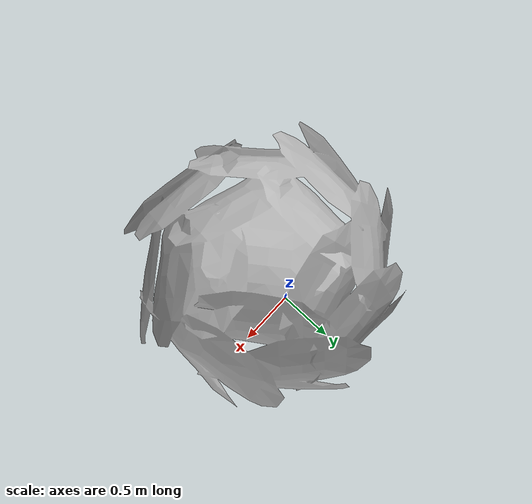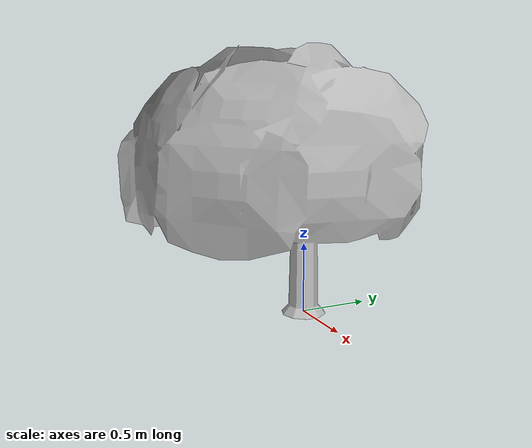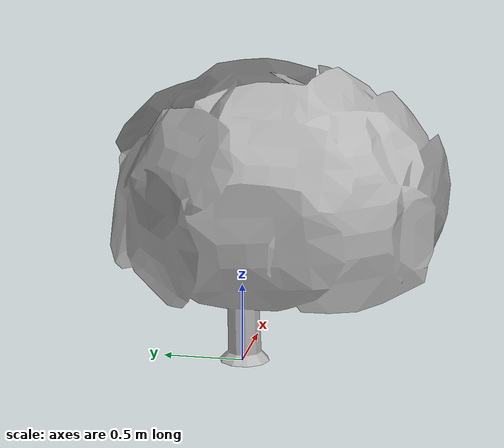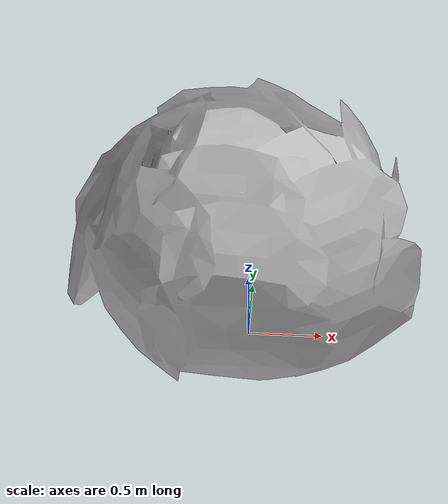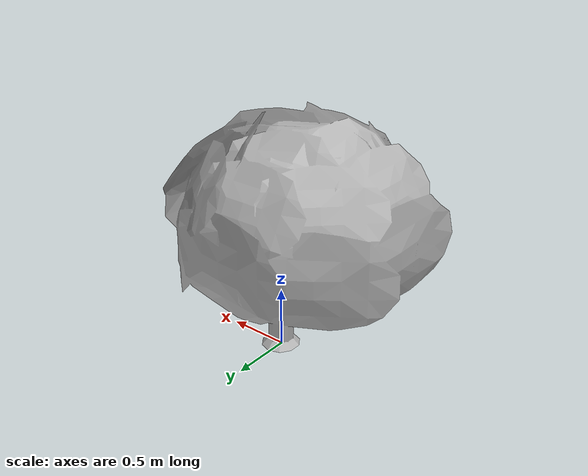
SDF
<?xml version='1.0'?>
<sdf version='1.4'>
  <model name="Tree_2">
    <static>true</static>
    <pose>0 0 0 0 0 0</pose>

    <link name="Tree_2">
      <visual name="Tree_2">
        <geometry>
          <mesh>
            <uri>model://Tree_2/Tree_2.dae</uri>
          </mesh>
        </geometry>
      </visual>
      <collision name="Tree_2">
        <geometry>
          <mesh>
            <uri>model://Tree_2/Tree_2.dae</uri>
          </mesh>
        </geometry>
      </collision>
    </link>

  </model>
</sdf>
